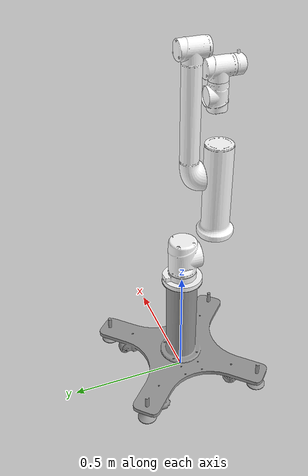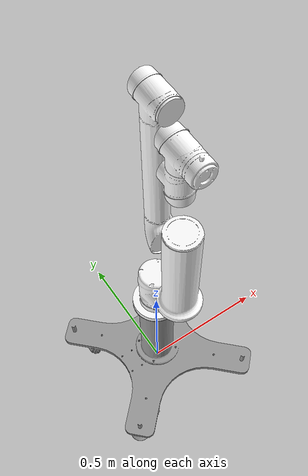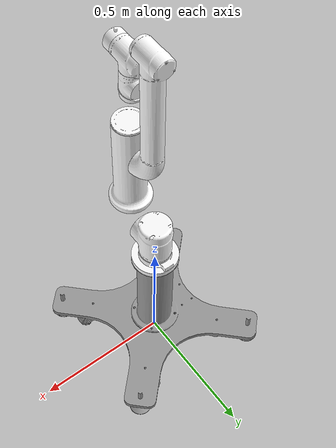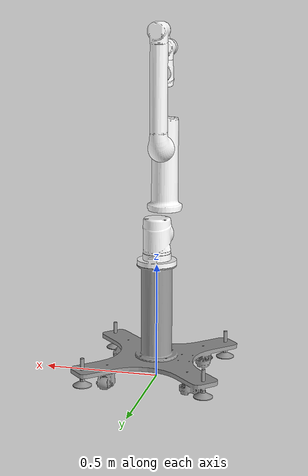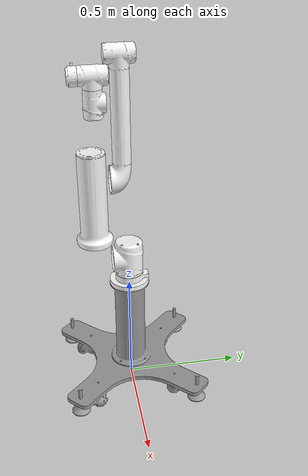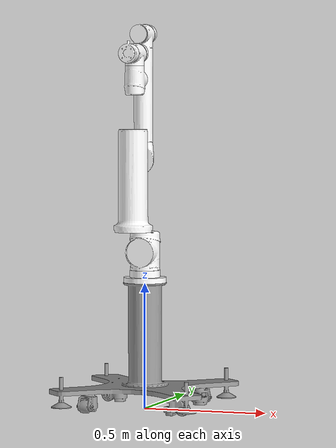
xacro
<?xml version="1.0"?>
<robot name="aubo_i7" xmlns:xacro="http://ros.org/wiki/xacro">

 <!-- Defining the colors used in this robot -->
    <material name="Black">
        <color rgba="0 0 0 1"/>
    </material>

    <material name="White">
        <color rgba="1 1 1 1"/>
    </material>

    <material name="Blue">
        <color rgba="0 0 1 1"/>
    </material>

    <material name="Red">
        <color rgba="1 0 0 1"/>
    </material>

    <material name="Grey">
        <color rgba="0.96 0.96 0.96 1"/>
    </material>

    <!-- Constants -->
    <xacro:property name="M_PI" value="3.14159"/>

    <link name="base_link">
        <inertial>
            <origin xyz="-4.763E-09 0.0027276 0.019097" rpy="0 0 0" />
            <mass value="0.76802" />
            <inertia ixx="0.0013972" ixy="1.8477E-09" ixz="-1.6619E-11" iyy="0.0012289" iyz="-2.0333E-05" izz="0.0023923" />
        </inertial>
        <visual>
            <origin xyz="0 0 0" rpy="0 0 0" />
            <geometry>
                <mesh filename="package://aubo_description/meshes/aubo_i7/collision/base_link.STL" />
            </geometry>
            <material name="">
                <color rgba="1 1 1 1" />
            </material>
        </visual>
        <collision>
            <origin xyz="0 0 0" rpy="0 0 0" />
            <geometry>
                <mesh filename="package://aubo_description/meshes/aubo_i7/collision/base_link.STL" />
            </geometry>
        </collision>
    </link>
    <link name="shoulder_Link">
        <inertial>
            <origin xyz="-3.2165E-07 0.0035585 0.0016956" rpy="0 0 0" />
            <mass value="1.8535" />
            <inertia ixx="0.0054991" ixy="-3.0466E-09" ixz="-7.4688E-08" iyy="0.0053429" iyz="1.2761E-05" izz="0.0035131" />
        </inertial>
        <visual>
            <origin xyz="0 0 0" rpy="0 0 0" />
            <geometry>
                <mesh filename="package://aubo_description/meshes/aubo_i7/collision/shoulder_Link.STL" />
            </geometry>
            <material name="">
                <color rgba="1 1 1 1" />
            </material>
        </visual>
        <collision>
            <origin xyz="0 0 0" rpy="0 0 0" />
            <geometry>
                <mesh filename="package://aubo_description/meshes/aubo_i7/collision/shoulder_Link.STL" />
            </geometry>
        </collision>
    </link>
    <joint name="shoulder_joint" type="revolute">
        <origin xyz="0 0 0.122" rpy="0 0 3.1416" />
        <parent link="base_link" />
        <child link="shoulder_Link" />
        <axis xyz="0 0 1" />
        <limit lower="-3.05" upper="3.05" effort="133" velocity="2.5964" />
        <property inertia="2.0" damping="0" stiffness="0" offset="0" motor_constant="8.72" ratio="121" />
    </joint>
    <link name="upperArm_Link">
        <inertial>
            <origin xyz="0.184 1.0526E-12 0.020165" rpy="0 0 0" />
            <mass value="5.4" />
            <inertia ixx="0.01266" ixy="6.0936E-09" ixz="-3.1817E-10" iyy="0.021969" iyz="-5.253E-13" izz="0.017998" />
        </inertial>
        <visual>
            <origin xyz="0 0 0" rpy="0 0 0" />
            <geometry>
                <mesh filename="package://aubo_description/meshes/aubo_i7/collision/upperArm_Link.STL" />
            </geometry>
            <material name="">
                <color rgba="1 1 1 1" />
            </material>
        </visual>
        <collision>
            <origin xyz="0 0 0" rpy="0 0 0" />
            <geometry>
                <mesh filename="package://aubo_description/meshes/aubo_i7/collision/upperArm_Link.STL" />
            </geometry>
        </collision>
    </link>
    <joint name="upperArm_joint" type="revolute">
        <origin xyz="0 0.1215 0" rpy="-1.5708 -1.5708 0" />
        <parent link="shoulder_Link" />
        <child link="upperArm_Link" />
        <axis xyz="0 0 1" />
        <limit lower="-3.05" upper="3.05" effort="133" velocity="2.5964" />
        <property inertia="2.0" damping="0" stiffness="0" offset="0" motor_constant="8.72" ratio="121" />
    </joint>
    <link name="foreArm_Link">
        <inertial>
            <origin xyz="0.16473 1.8249E-06 0.099156" rpy="0 0 0" />
            <mass value="2.1062" />
            <inertia ixx="0.0021064" ixy="6.3718E-08" ixz="-0.00010588" iyy="0.0054027" iyz="3.6214E-08" izz="0.0050887" />
        </inertial>
        <visual>
            <origin xyz="0 0 0" rpy="0 0 0" />
            <geometry>
                <mesh filename="package://aubo_description/meshes/aubo_i7/collision/foreArm_Link.STL" />
            </geometry>
            <material name="">
                <color rgba="1 1 1 1" />
            </material>
        </visual>
        <collision>
            <origin xyz="0 0 0" rpy="0 0 0" />
            <geometry>
                <mesh filename="package://aubo_description/meshes/aubo_i7/collision/foreArm_Link.STL" />
            </geometry>
        </collision>
    </link>
    <joint name="foreArm_joint" type="revolute">
        <origin xyz="0.368 0 0" rpy="-3.1416 0 0" />
        <parent link="upperArm_Link" />
        <child link="foreArm_Link" />
        <axis xyz="0 0 1" />
        <limit lower="-3.05" upper="3.05" effort="300" velocity="100" />
        <property inertia="2.0" damping="0" stiffness="0" offset="0" motor_constant="8.72" ratio="121" />
    </joint>
    <link name="wrist1_Link">
        <inertial>
            <origin xyz="2.7782E-07 -0.00019328 -0.0025934" rpy="0 0 0" />
            <mass value="0.59073" />
            <inertia ixx="0.00090244" ixy="-1.2002E-08" ixz="1.0257E-09" iyy="0.00047796" iyz="-4.7932E-07" izz="0.00087249" />
        </inertial>
        <visual>
            <origin xyz="0 0 0" rpy="0 0 0" />
            <geometry>
                <mesh filename="package://aubo_description/meshes/aubo_i7/collision/wrist1_Link.STL" />
            </geometry>
            <material name="">
                <color rgba="1 1 1 1" />
            </material>
        </visual>
        <collision>
            <origin xyz="0 0 0" rpy="0 0 0" />
            <geometry>
                <mesh filename="package://aubo_description/meshes/aubo_i7/collision/wrist1_Link.STL" />
            </geometry>
        </collision>
    </link>
    <joint name="wrist1_joint" type="revolute">
        <origin xyz="0.316 0 0" rpy="3.1416 0 1.5708" />
        <parent link="foreArm_Link" />
        <child link="wrist1_Link" />
        <axis xyz="0 0 1" />
        <limit lower="-3.05" upper="3.05" effort="300" velocity="100" />
        <property inertia="0.15" damping="0" stiffness="0" offset="0" motor_constant="7.092" ratio="101" />
    </joint>
    <link name="wrist2_Link">
        <inertial>
            <origin xyz="-2.7782E-07 0.00019328 -0.0025934" rpy="0 0 0" />
            <mass value="0.59073" />
            <inertia ixx="0.00090244" ixy="-1.2002E-08" ixz="-1.0257E-09" iyy="0.00047796" iyz="4.7932E-07" izz="0.00087249" />
        </inertial>
        <visual>
            <origin xyz="0 0 0" rpy="0 0 0" />
            <geometry>
                <mesh filename="package://aubo_description/meshes/aubo_i7/collision/wrist2_Link.STL" />
            </geometry>
            <material name="">
                <color rgba="1 1 1 1" />
            </material>
        </visual>
        <collision>
            <origin xyz="0 0 0" rpy="0 0 0" />
            <geometry>
                <mesh filename="package://aubo_description/meshes/aubo_i7/collision/wrist2_Link.STL" />
            </geometry>
        </collision>
    </link>
    <joint name="wrist2_joint" type="revolute">
        <origin xyz="0 0.1025 0" rpy="-1.5708 0 0" />
        <parent link="wrist1_Link" />
        <child link="wrist2_Link" />
        <axis xyz="0 0 1" />
        <limit lower="-3.05" upper="3.05" effort="300" velocity="100" />
        <property inertia="0.15" damping="0" stiffness="0" offset="0" motor_constant="7.092" ratio="101" />
    </joint>
    <link name="wrist3_Link">
        <inertial>
            <origin xyz="-2.1061E-09 0.00023517 -0.018749" rpy="0 0 0" />
            <mass value="0.13549" />
            <inertia ixx="5.8376E-05" ixy="5.8501E-12" ixz="-1.2141E-12" iyy="5.9242E-05" iyz="-3.3003E-08" izz="9.462E-05" />
        </inertial>
        <visual>
            <origin xyz="0 0 0" rpy="0 0 0" />
            <geometry>
                <mesh filename="package://aubo_description/meshes/aubo_i7/collision/wrist3_Link.STL" />
            </geometry>
            <material name="">
                <color rgba="1 1 1 1" />
            </material>
        </visual>
        <collision>
            <origin xyz="0 0 0" rpy="0 0 0" />
            <geometry>
                <mesh filename="package://aubo_description/meshes/aubo_i7/collision/wrist3_Link.STL" />
            </geometry>
        </collision>
    </link>
    <joint name="wrist3_joint" type="revolute">
        <origin xyz="0 -0.094 0" rpy="1.5708 0 0" />
        <parent link="wrist2_Link" />
        <child link="wrist3_Link" />
        <axis xyz="0 0 1" />
        <limit lower="-3.05" upper="3.05" effort="300" velocity="100" />
        <property inertia="0.15" damping="0" stiffness="0" offset="0" motor_constant="7.092" ratio="101" />
    </joint>

  <!-- /////////////////////////////////  pedestal_Link   ////////////////////////////////////// -->
  <link name="pedestal_Link">
    <visual>
      <geometry>
        <mesh filename="package://aubo_description/meshes/aubo_e5/collision/pedestal.STL" />
      </geometry>
    </visual>
  </link>

  <joint name="pedestal_joint" type="fixed">
    <parent link="pedestal_Link"/>
    <child link="base_link"/>
    <origin xyz="0.0 0.0 0.503" rpy="0.0 0.0 0.0" />
  </joint>

 <!-- /////////////////////////////////   world   ////////////////////////////////////// -->
  <link name="world" />

  <joint name="world_joint" type="fixed">
    <parent link="world" />
    <child link ="pedestal_Link" />
    <origin xyz="0.0 0.0 0.0" rpy="0.0 0.0 0.0" />
  </joint>

  <!-- /////////////////////////////////   gazebo color   ////////////////////////////////////// -->
  <gazebo reference="pedestal_Link">
     <material>Gazebo/Grey</material>
  </gazebo>

 <!--////////////////////////////////// Transmissions for ROS Control //////////////////////////-->

 <xacro:macro name="aubo_arm_transmission" params="joint_name">
     <transmission name="${joint_name}_trans">
       <type>transmission_interface/SimpleTransmission</type>
       <joint name="${joint_name}">
         <hardwareInterface>hardware_interface/PositionJointInterface</hardwareInterface>
       </joint>
       <actuator name="${joint_name}_motor">
         <mechanicalReduction>1</mechanicalReduction>
       </actuator>
     </transmission>
 </xacro:macro>

 <xacro:aubo_arm_transmission joint_name="shoulder_joint"/>
 <xacro:aubo_arm_transmission joint_name="upperArm_joint"/>
 <xacro:aubo_arm_transmission joint_name="foreArm_joint"/>
 <xacro:aubo_arm_transmission joint_name="wrist1_joint"/>
 <xacro:aubo_arm_transmission joint_name="wrist2_joint"/>
 <xacro:aubo_arm_transmission joint_name="wrist3_joint"/>

 <!-- ros_control plugin -->
 <gazebo>
     <plugin name="gazebo_ros_control" filename="libgazebo_ros_control.so">
         <robotNamespace>/aubo_i7</robotNamespace>
     </plugin>
 </gazebo>

</robot>
